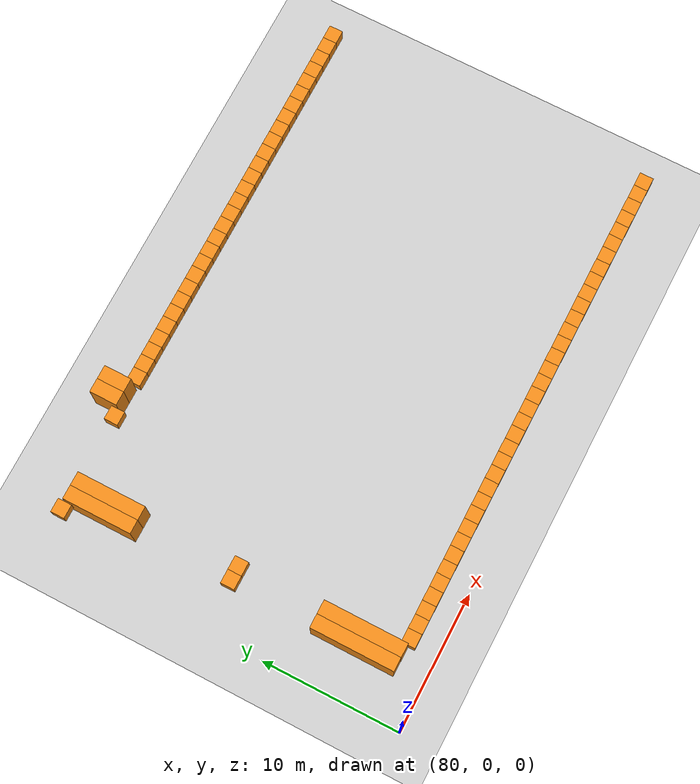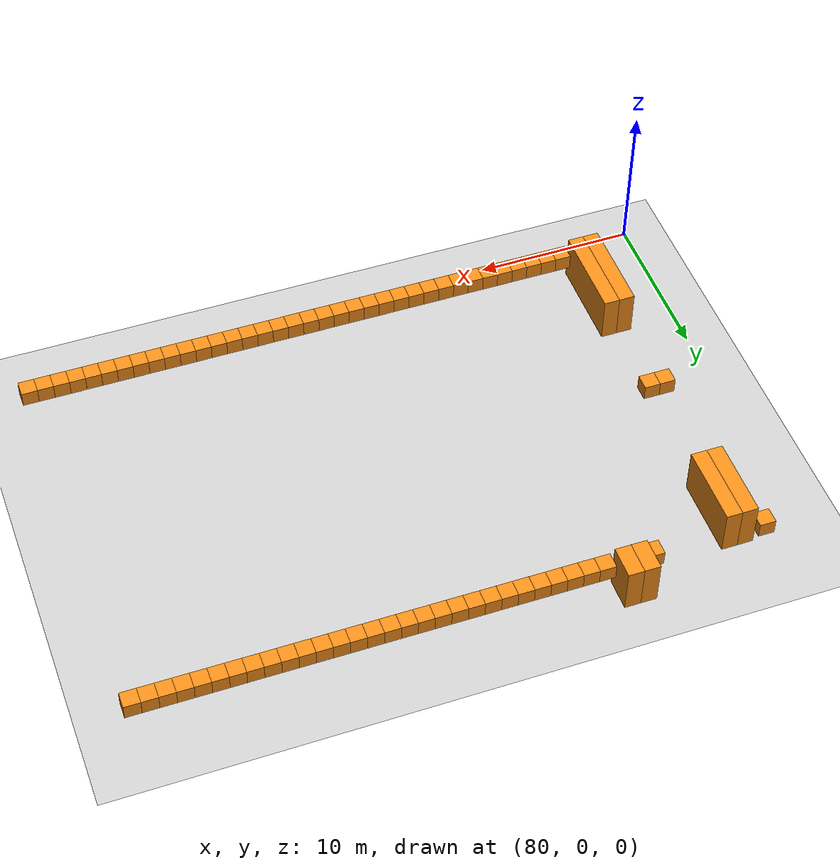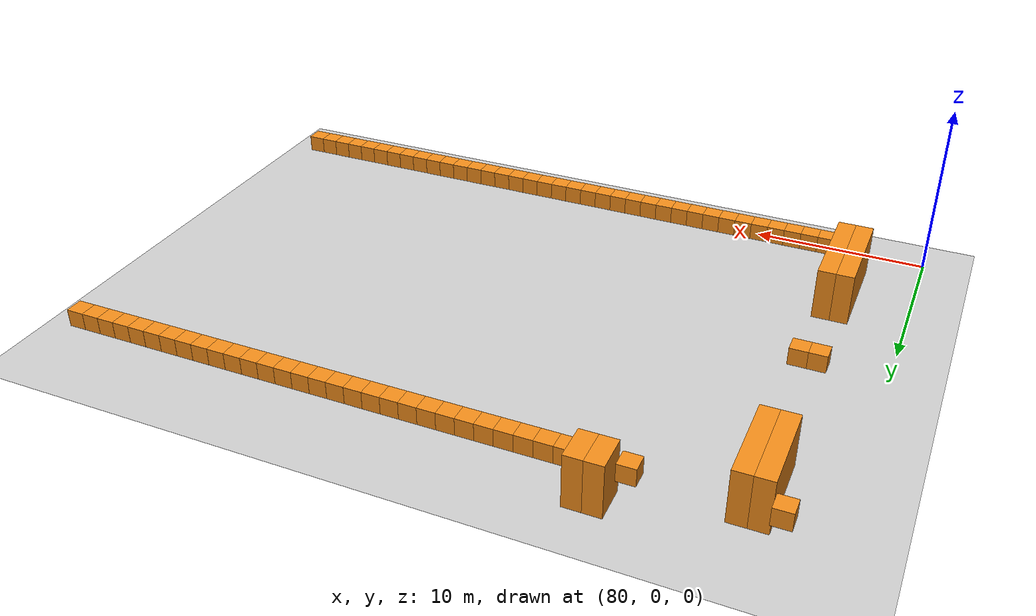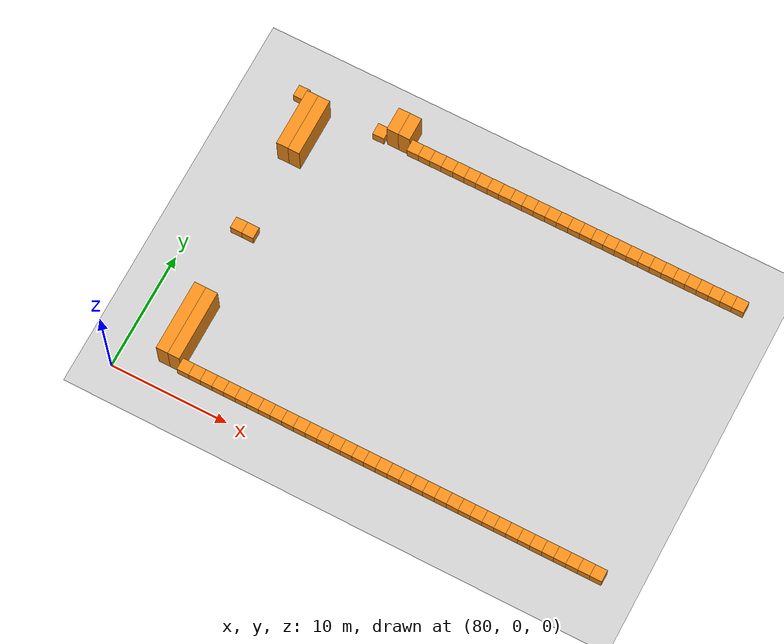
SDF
<sdf version="1.6">
 <world name="default">
  <include><uri>model://ground_plane</uri></include>
  <model name="unit_box_855">
   <pose>82.50    26.00     1.50 0 0 0</pose>
   <static>1</static>
   <link name="link">
    <inertial>
     <mass>5000</mass>
     <inertia><ixx>200</ixx><ixy>0</ixy><ixz>0</ixz><iyy>200</iyy><iyz>0</iyz><izz>200</izz></inertia>
    </inertial>
    <collision name="collision"><geometry><box><size>1 1 1</size></box></geometry></collision>
    <visual name="visual">
     <geometry><box><size>1 1 1</size></box></geometry>
     <material>
      <script><name>Gazebo/Orange</name><uri>file://media/materials/scripts/gazebo.material</uri></script>
     </material>
    </visual>
   </link>
  </model>
  <model name="unit_box_866">
   <pose>83.50     5.00     1.50 0 0 0</pose>
   <static>1</static>
   <link name="link">
    <inertial>
     <mass>5000</mass>
     <inertia><ixx>200</ixx><ixy>0</ixy><ixz>0</ixz><iyy>200</iyy><iyz>0</iyz><izz>200</izz></inertia>
    </inertial>
    <collision name="collision"><geometry><box><size>1 6 3</size></box></geometry></collision>
    <visual name="visual">
     <geometry><box><size>1 6 3</size></box></geometry>
     <material>
      <script><name>Gazebo/Orange</name><uri>file://media/materials/scripts/gazebo.material</uri></script>
     </material>
    </visual>
   </link>
  </model>
  <model name="unit_box_867">
   <pose>83.50    14.00     1.50 0 0 0</pose>
   <static>1</static>
   <link name="link">
    <inertial>
     <mass>5000</mass>
     <inertia><ixx>200</ixx><ixy>0</ixy><ixz>0</ixz><iyy>200</iyy><iyz>0</iyz><izz>200</izz></inertia>
    </inertial>
    <collision name="collision"><geometry><box><size>1 1 1</size></box></geometry></collision>
    <visual name="visual">
     <geometry><box><size>1 1 1</size></box></geometry>
     <material>
      <script><name>Gazebo/Orange</name><uri>file://media/materials/scripts/gazebo.material</uri></script>
     </material>
    </visual>
   </link>
  </model>
  <model name="unit_box_868">
   <pose>83.50    23.50     1.50 0 0 0</pose>
   <static>1</static>
   <link name="link">
    <inertial>
     <mass>5000</mass>
     <inertia><ixx>200</ixx><ixy>0</ixy><ixz>0</ixz><iyy>200</iyy><iyz>0</iyz><izz>200</izz></inertia>
    </inertial>
    <collision name="collision"><geometry><box><size>1 5 3</size></box></geometry></collision>
    <visual name="visual">
     <geometry><box><size>1 5 3</size></box></geometry>
     <material>
      <script><name>Gazebo/Orange</name><uri>file://media/materials/scripts/gazebo.material</uri></script>
     </material>
    </visual>
   </link>
  </model>
  <model name="unit_box_879">
   <pose>84.50     5.00     1.50 0 0 0</pose>
   <static>1</static>
   <link name="link">
    <inertial>
     <mass>5000</mass>
     <inertia><ixx>200</ixx><ixy>0</ixy><ixz>0</ixz><iyy>200</iyy><iyz>0</iyz><izz>200</izz></inertia>
    </inertial>
    <collision name="collision"><geometry><box><size>1 6 3</size></box></geometry></collision>
    <visual name="visual">
     <geometry><box><size>1 6 3</size></box></geometry>
     <material>
      <script><name>Gazebo/Orange</name><uri>file://media/materials/scripts/gazebo.material</uri></script>
     </material>
    </visual>
   </link>
  </model>
  <model name="unit_box_880">
   <pose>84.50    14.00     1.50 0 0 0</pose>
   <static>1</static>
   <link name="link">
    <inertial>
     <mass>5000</mass>
     <inertia><ixx>200</ixx><ixy>0</ixy><ixz>0</ixz><iyy>200</iyy><iyz>0</iyz><izz>200</izz></inertia>
    </inertial>
    <collision name="collision"><geometry><box><size>1 1 1</size></box></geometry></collision>
    <visual name="visual">
     <geometry><box><size>1 1 1</size></box></geometry>
     <material>
      <script><name>Gazebo/Orange</name><uri>file://media/materials/scripts/gazebo.material</uri></script>
     </material>
    </visual>
   </link>
  </model>
  <model name="unit_box_881">
   <pose>84.50    23.50     1.50 0 0 0</pose>
   <static>1</static>
   <link name="link">
    <inertial>
     <mass>5000</mass>
     <inertia><ixx>200</ixx><ixy>0</ixy><ixz>0</ixz><iyy>200</iyy><iyz>0</iyz><izz>200</izz></inertia>
    </inertial>
    <collision name="collision"><geometry><box><size>1 5 3</size></box></geometry></collision>
    <visual name="visual">
     <geometry><box><size>1 5 3</size></box></geometry>
     <material>
      <script><name>Gazebo/Orange</name><uri>file://media/materials/scripts/gazebo.material</uri></script>
     </material>
    </visual>
   </link>
  </model>
  <model name="unit_box_889">
   <pose>85.50     2.00     1.50 0 0 0</pose>
   <static>1</static>
   <link name="link">
    <inertial>
     <mass>5000</mass>
     <inertia><ixx>200</ixx><ixy>0</ixy><ixz>0</ixz><iyy>200</iyy><iyz>0</iyz><izz>200</izz></inertia>
    </inertial>
    <collision name="collision"><geometry><box><size>1 1 1</size></box></geometry></collision>
    <visual name="visual">
     <geometry><box><size>1 1 1</size></box></geometry>
     <material>
      <script><name>Gazebo/Orange</name><uri>file://media/materials/scripts/gazebo.material</uri></script>
     </material>
    </visual>
   </link>
  </model>
  <model name="unit_box_896">
   <pose>86.50     2.00     1.50 0 0 0</pose>
   <static>1</static>
   <link name="link">
    <inertial>
     <mass>5000</mass>
     <inertia><ixx>200</ixx><ixy>0</ixy><ixz>0</ixz><iyy>200</iyy><iyz>0</iyz><izz>200</izz></inertia>
    </inertial>
    <collision name="collision"><geometry><box><size>1 1 1</size></box></geometry></collision>
    <visual name="visual">
     <geometry><box><size>1 1 1</size></box></geometry>
     <material>
      <script><name>Gazebo/Orange</name><uri>file://media/materials/scripts/gazebo.material</uri></script>
     </material>
    </visual>
   </link>
  </model>
  <model name="unit_box_903">
   <pose>87.50     2.00     1.50 0 0 0</pose>
   <static>1</static>
   <link name="link">
    <inertial>
     <mass>5000</mass>
     <inertia><ixx>200</ixx><ixy>0</ixy><ixz>0</ixz><iyy>200</iyy><iyz>0</iyz><izz>200</izz></inertia>
    </inertial>
    <collision name="collision"><geometry><box><size>1 1 1</size></box></geometry></collision>
    <visual name="visual">
     <geometry><box><size>1 1 1</size></box></geometry>
     <material>
      <script><name>Gazebo/Orange</name><uri>file://media/materials/scripts/gazebo.material</uri></script>
     </material>
    </visual>
   </link>
  </model>
  <model name="unit_box_910">
   <pose>88.50     2.00     1.50 0 0 0</pose>
   <static>1</static>
   <link name="link">
    <inertial>
     <mass>5000</mass>
     <inertia><ixx>200</ixx><ixy>0</ixy><ixz>0</ixz><iyy>200</iyy><iyz>0</iyz><izz>200</izz></inertia>
    </inertial>
    <collision name="collision"><geometry><box><size>1 1 1</size></box></geometry></collision>
    <visual name="visual">
     <geometry><box><size>1 1 1</size></box></geometry>
     <material>
      <script><name>Gazebo/Orange</name><uri>file://media/materials/scripts/gazebo.material</uri></script>
     </material>
    </visual>
   </link>
  </model>
  <model name="unit_box_917">
   <pose>89.50     2.00     1.50 0 0 0</pose>
   <static>1</static>
   <link name="link">
    <inertial>
     <mass>5000</mass>
     <inertia><ixx>200</ixx><ixy>0</ixy><ixz>0</ixz><iyy>200</iyy><iyz>0</iyz><izz>200</izz></inertia>
    </inertial>
    <collision name="collision"><geometry><box><size>1 1 1</size></box></geometry></collision>
    <visual name="visual">
     <geometry><box><size>1 1 1</size></box></geometry>
     <material>
      <script><name>Gazebo/Orange</name><uri>file://media/materials/scripts/gazebo.material</uri></script>
     </material>
    </visual>
   </link>
  </model>
  <model name="unit_box_918">
   <pose>89.50    26.00     1.50 0 0 0</pose>
   <static>1</static>
   <link name="link">
    <inertial>
     <mass>5000</mass>
     <inertia><ixx>200</ixx><ixy>0</ixy><ixz>0</ixz><iyy>200</iyy><iyz>0</iyz><izz>200</izz></inertia>
    </inertial>
    <collision name="collision"><geometry><box><size>1 1 1</size></box></geometry></collision>
    <visual name="visual">
     <geometry><box><size>1 1 1</size></box></geometry>
     <material>
      <script><name>Gazebo/Orange</name><uri>file://media/materials/scripts/gazebo.material</uri></script>
     </material>
    </visual>
   </link>
  </model>
  <model name="unit_box_925">
   <pose>90.50     2.00     1.50 0 0 0</pose>
   <static>1</static>
   <link name="link">
    <inertial>
     <mass>5000</mass>
     <inertia><ixx>200</ixx><ixy>0</ixy><ixz>0</ixz><iyy>200</iyy><iyz>0</iyz><izz>200</izz></inertia>
    </inertial>
    <collision name="collision"><geometry><box><size>1 1 1</size></box></geometry></collision>
    <visual name="visual">
     <geometry><box><size>1 1 1</size></box></geometry>
     <material>
      <script><name>Gazebo/Orange</name><uri>file://media/materials/scripts/gazebo.material</uri></script>
     </material>
    </visual>
   </link>
  </model>
  <model name="unit_box_926">
   <pose>90.50    27.00     1.50 0 0 0</pose>
   <static>1</static>
   <link name="link">
    <inertial>
     <mass>5000</mass>
     <inertia><ixx>200</ixx><ixy>0</ixy><ixz>0</ixz><iyy>200</iyy><iyz>0</iyz><izz>200</izz></inertia>
    </inertial>
    <collision name="collision"><geometry><box><size>1 2 3</size></box></geometry></collision>
    <visual name="visual">
     <geometry><box><size>1 2 3</size></box></geometry>
     <material>
      <script><name>Gazebo/Orange</name><uri>file://media/materials/scripts/gazebo.material</uri></script>
     </material>
    </visual>
   </link>
  </model>
  <model name="unit_box_933">
   <pose>91.50     2.00     1.50 0 0 0</pose>
   <static>1</static>
   <link name="link">
    <inertial>
     <mass>5000</mass>
     <inertia><ixx>200</ixx><ixy>0</ixy><ixz>0</ixz><iyy>200</iyy><iyz>0</iyz><izz>200</izz></inertia>
    </inertial>
    <collision name="collision"><geometry><box><size>1 1 1</size></box></geometry></collision>
    <visual name="visual">
     <geometry><box><size>1 1 1</size></box></geometry>
     <material>
      <script><name>Gazebo/Orange</name><uri>file://media/materials/scripts/gazebo.material</uri></script>
     </material>
    </visual>
   </link>
  </model>
  <model name="unit_box_934">
   <pose>91.50    27.00     1.50 0 0 0</pose>
   <static>1</static>
   <link name="link">
    <inertial>
     <mass>5000</mass>
     <inertia><ixx>200</ixx><ixy>0</ixy><ixz>0</ixz><iyy>200</iyy><iyz>0</iyz><izz>200</izz></inertia>
    </inertial>
    <collision name="collision"><geometry><box><size>1 2 3</size></box></geometry></collision>
    <visual name="visual">
     <geometry><box><size>1 2 3</size></box></geometry>
     <material>
      <script><name>Gazebo/Orange</name><uri>file://media/materials/scripts/gazebo.material</uri></script>
     </material>
    </visual>
   </link>
  </model>
  <model name="unit_box_942">
   <pose>92.50     2.00     1.50 0 0 0</pose>
   <static>1</static>
   <link name="link">
    <inertial>
     <mass>5000</mass>
     <inertia><ixx>200</ixx><ixy>0</ixy><ixz>0</ixz><iyy>200</iyy><iyz>0</iyz><izz>200</izz></inertia>
    </inertial>
    <collision name="collision"><geometry><box><size>1 1 1</size></box></geometry></collision>
    <visual name="visual">
     <geometry><box><size>1 1 1</size></box></geometry>
     <material>
      <script><name>Gazebo/Orange</name><uri>file://media/materials/scripts/gazebo.material</uri></script>
     </material>
    </visual>
   </link>
  </model>
  <model name="unit_box_943">
   <pose>92.50    26.00     1.50 0 0 0</pose>
   <static>1</static>
   <link name="link">
    <inertial>
     <mass>5000</mass>
     <inertia><ixx>200</ixx><ixy>0</ixy><ixz>0</ixz><iyy>200</iyy><iyz>0</iyz><izz>200</izz></inertia>
    </inertial>
    <collision name="collision"><geometry><box><size>1 1 1</size></box></geometry></collision>
    <visual name="visual">
     <geometry><box><size>1 1 1</size></box></geometry>
     <material>
      <script><name>Gazebo/Orange</name><uri>file://media/materials/scripts/gazebo.material</uri></script>
     </material>
    </visual>
   </link>
  </model>
  <model name="unit_box_950">
   <pose>93.50     2.00     1.50 0 0 0</pose>
   <static>1</static>
   <link name="link">
    <inertial>
     <mass>5000</mass>
     <inertia><ixx>200</ixx><ixy>0</ixy><ixz>0</ixz><iyy>200</iyy><iyz>0</iyz><izz>200</izz></inertia>
    </inertial>
    <collision name="collision"><geometry><box><size>1 1 1</size></box></geometry></collision>
    <visual name="visual">
     <geometry><box><size>1 1 1</size></box></geometry>
     <material>
      <script><name>Gazebo/Orange</name><uri>file://media/materials/scripts/gazebo.material</uri></script>
     </material>
    </visual>
   </link>
  </model>
  <model name="unit_box_951">
   <pose>93.50    26.00     1.50 0 0 0</pose>
   <static>1</static>
   <link name="link">
    <inertial>
     <mass>5000</mass>
     <inertia><ixx>200</ixx><ixy>0</ixy><ixz>0</ixz><iyy>200</iyy><iyz>0</iyz><izz>200</izz></inertia>
    </inertial>
    <collision name="collision"><geometry><box><size>1 1 1</size></box></geometry></collision>
    <visual name="visual">
     <geometry><box><size>1 1 1</size></box></geometry>
     <material>
      <script><name>Gazebo/Orange</name><uri>file://media/materials/scripts/gazebo.material</uri></script>
     </material>
    </visual>
   </link>
  </model>
  <model name="unit_box_958">
   <pose>94.50     2.00     1.50 0 0 0</pose>
   <static>1</static>
   <link name="link">
    <inertial>
     <mass>5000</mass>
     <inertia><ixx>200</ixx><ixy>0</ixy><ixz>0</ixz><iyy>200</iyy><iyz>0</iyz><izz>200</izz></inertia>
    </inertial>
    <collision name="collision"><geometry><box><size>1 1 1</size></box></geometry></collision>
    <visual name="visual">
     <geometry><box><size>1 1 1</size></box></geometry>
     <material>
      <script><name>Gazebo/Orange</name><uri>file://media/materials/scripts/gazebo.material</uri></script>
     </material>
    </visual>
   </link>
  </model>
  <model name="unit_box_959">
   <pose>94.50    26.00     1.50 0 0 0</pose>
   <static>1</static>
   <link name="link">
    <inertial>
     <mass>5000</mass>
     <inertia><ixx>200</ixx><ixy>0</ixy><ixz>0</ixz><iyy>200</iyy><iyz>0</iyz><izz>200</izz></inertia>
    </inertial>
    <collision name="collision"><geometry><box><size>1 1 1</size></box></geometry></collision>
    <visual name="visual">
     <geometry><box><size>1 1 1</size></box></geometry>
     <material>
      <script><name>Gazebo/Orange</name><uri>file://media/materials/scripts/gazebo.material</uri></script>
     </material>
    </visual>
   </link>
  </model>
  <model name="unit_box_966">
   <pose>95.50     2.00     1.50 0 0 0</pose>
   <static>1</static>
   <link name="link">
    <inertial>
     <mass>5000</mass>
     <inertia><ixx>200</ixx><ixy>0</ixy><ixz>0</ixz><iyy>200</iyy><iyz>0</iyz><izz>200</izz></inertia>
    </inertial>
    <collision name="collision"><geometry><box><size>1 1 1</size></box></geometry></collision>
    <visual name="visual">
     <geometry><box><size>1 1 1</size></box></geometry>
     <material>
      <script><name>Gazebo/Orange</name><uri>file://media/materials/scripts/gazebo.material</uri></script>
     </material>
    </visual>
   </link>
  </model>
  <model name="unit_box_967">
   <pose>95.50    26.00     1.50 0 0 0</pose>
   <static>1</static>
   <link name="link">
    <inertial>
     <mass>5000</mass>
     <inertia><ixx>200</ixx><ixy>0</ixy><ixz>0</ixz><iyy>200</iyy><iyz>0</iyz><izz>200</izz></inertia>
    </inertial>
    <collision name="collision"><geometry><box><size>1 1 1</size></box></geometry></collision>
    <visual name="visual">
     <geometry><box><size>1 1 1</size></box></geometry>
     <material>
      <script><name>Gazebo/Orange</name><uri>file://media/materials/scripts/gazebo.material</uri></script>
     </material>
    </visual>
   </link>
  </model>
  <model name="unit_box_973">
   <pose>96.50     2.00     1.50 0 0 0</pose>
   <static>1</static>
   <link name="link">
    <inertial>
     <mass>5000</mass>
     <inertia><ixx>200</ixx><ixy>0</ixy><ixz>0</ixz><iyy>200</iyy><iyz>0</iyz><izz>200</izz></inertia>
    </inertial>
    <collision name="collision"><geometry><box><size>1 1 1</size></box></geometry></collision>
    <visual name="visual">
     <geometry><box><size>1 1 1</size></box></geometry>
     <material>
      <script><name>Gazebo/Orange</name><uri>file://media/materials/scripts/gazebo.material</uri></script>
     </material>
    </visual>
   </link>
  </model>
  <model name="unit_box_974">
   <pose>96.50    26.00     1.50 0 0 0</pose>
   <static>1</static>
   <link name="link">
    <inertial>
     <mass>5000</mass>
     <inertia><ixx>200</ixx><ixy>0</ixy><ixz>0</ixz><iyy>200</iyy><iyz>0</iyz><izz>200</izz></inertia>
    </inertial>
    <collision name="collision"><geometry><box><size>1 1 1</size></box></geometry></collision>
    <visual name="visual">
     <geometry><box><size>1 1 1</size></box></geometry>
     <material>
      <script><name>Gazebo/Orange</name><uri>file://media/materials/scripts/gazebo.material</uri></script>
     </material>
    </visual>
   </link>
  </model>
  <model name="unit_box_981">
   <pose>97.50     2.00     1.50 0 0 0</pose>
   <static>1</static>
   <link name="link">
    <inertial>
     <mass>5000</mass>
     <inertia><ixx>200</ixx><ixy>0</ixy><ixz>0</ixz><iyy>200</iyy><iyz>0</iyz><izz>200</izz></inertia>
    </inertial>
    <collision name="collision"><geometry><box><size>1 1 1</size></box></geometry></collision>
    <visual name="visual">
     <geometry><box><size>1 1 1</size></box></geometry>
     <material>
      <script><name>Gazebo/Orange</name><uri>file://media/materials/scripts/gazebo.material</uri></script>
     </material>
    </visual>
   </link>
  </model>
  <model name="unit_box_982">
   <pose>97.50    26.00     1.50 0 0 0</pose>
   <static>1</static>
   <link name="link">
    <inertial>
     <mass>5000</mass>
     <inertia><ixx>200</ixx><ixy>0</ixy><ixz>0</ixz><iyy>200</iyy><iyz>0</iyz><izz>200</izz></inertia>
    </inertial>
    <collision name="collision"><geometry><box><size>1 1 1</size></box></geometry></collision>
    <visual name="visual">
     <geometry><box><size>1 1 1</size></box></geometry>
     <material>
      <script><name>Gazebo/Orange</name><uri>file://media/materials/scripts/gazebo.material</uri></script>
     </material>
    </visual>
   </link>
  </model>
  <model name="unit_box_989">
   <pose>98.50     2.00     1.50 0 0 0</pose>
   <static>1</static>
   <link name="link">
    <inertial>
     <mass>5000</mass>
     <inertia><ixx>200</ixx><ixy>0</ixy><ixz>0</ixz><iyy>200</iyy><iyz>0</iyz><izz>200</izz></inertia>
    </inertial>
    <collision name="collision"><geometry><box><size>1 1 1</size></box></geometry></collision>
    <visual name="visual">
     <geometry><box><size>1 1 1</size></box></geometry>
     <material>
      <script><name>Gazebo/Orange</name><uri>file://media/materials/scripts/gazebo.material</uri></script>
     </material>
    </visual>
   </link>
  </model>
  <model name="unit_box_990">
   <pose>98.50    26.00     1.50 0 0 0</pose>
   <static>1</static>
   <link name="link">
    <inertial>
     <mass>5000</mass>
     <inertia><ixx>200</ixx><ixy>0</ixy><ixz>0</ixz><iyy>200</iyy><iyz>0</iyz><izz>200</izz></inertia>
    </inertial>
    <collision name="collision"><geometry><box><size>1 1 1</size></box></geometry></collision>
    <visual name="visual">
     <geometry><box><size>1 1 1</size></box></geometry>
     <material>
      <script><name>Gazebo/Orange</name><uri>file://media/materials/scripts/gazebo.material</uri></script>
     </material>
    </visual>
   </link>
  </model>
  <model name="unit_box_997">
   <pose>99.50     2.00     1.50 0 0 0</pose>
   <static>1</static>
   <link name="link">
    <inertial>
     <mass>5000</mass>
     <inertia><ixx>200</ixx><ixy>0</ixy><ixz>0</ixz><iyy>200</iyy><iyz>0</iyz><izz>200</izz></inertia>
    </inertial>
    <collision name="collision"><geometry><box><size>1 1 1</size></box></geometry></collision>
    <visual name="visual">
     <geometry><box><size>1 1 1</size></box></geometry>
     <material>
      <script><name>Gazebo/Orange</name><uri>file://media/materials/scripts/gazebo.material</uri></script>
     </material>
    </visual>
   </link>
  </model>
  <model name="unit_box_998">
   <pose>99.50    26.00     1.50 0 0 0</pose>
   <static>1</static>
   <link name="link">
    <inertial>
     <mass>5000</mass>
     <inertia><ixx>200</ixx><ixy>0</ixy><ixz>0</ixz><iyy>200</iyy><iyz>0</iyz><izz>200</izz></inertia>
    </inertial>
    <collision name="collision"><geometry><box><size>1 1 1</size></box></geometry></collision>
    <visual name="visual">
     <geometry><box><size>1 1 1</size></box></geometry>
     <material>
      <script><name>Gazebo/Orange</name><uri>file://media/materials/scripts/gazebo.material</uri></script>
     </material>
    </visual>
   </link>
  </model>
  <model name="unit_box_1004">
   <pose>100.50     2.00     1.50 0 0 0</pose>
   <static>1</static>
   <link name="link">
    <inertial>
     <mass>5000</mass>
     <inertia><ixx>200</ixx><ixy>0</ixy><ixz>0</ixz><iyy>200</iyy><iyz>0</iyz><izz>200</izz></inertia>
    </inertial>
    <collision name="collision"><geometry><box><size>1 1 1</size></box></geometry></collision>
    <visual name="visual">
     <geometry><box><size>1 1 1</size></box></geometry>
     <material>
      <script><name>Gazebo/Orange</name><uri>file://media/materials/scripts/gazebo.material</uri></script>
     </material>
    </visual>
   </link>
  </model>
  <model name="unit_box_1005">
   <pose>100.50    26.00     1.50 0 0 0</pose>
   <static>1</static>
   <link name="link">
    <inertial>
     <mass>5000</mass>
     <inertia><ixx>200</ixx><ixy>0</ixy><ixz>0</ixz><iyy>200</iyy><iyz>0</iyz><izz>200</izz></inertia>
    </inertial>
    <collision name="collision"><geometry><box><size>1 1 1</size></box></geometry></collision>
    <visual name="visual">
     <geometry><box><size>1 1 1</size></box></geometry>
     <material>
      <script><name>Gazebo/Orange</name><uri>file://media/materials/scripts/gazebo.material</uri></script>
     </material>
    </visual>
   </link>
  </model>
  <model name="unit_box_1010">
   <pose>101.50     2.00     1.50 0 0 0</pose>
   <static>1</static>
   <link name="link">
    <inertial>
     <mass>5000</mass>
     <inertia><ixx>200</ixx><ixy>0</ixy><ixz>0</ixz><iyy>200</iyy><iyz>0</iyz><izz>200</izz></inertia>
    </inertial>
    <collision name="collision"><geometry><box><size>1 1 1</size></box></geometry></collision>
    <visual name="visual">
     <geometry><box><size>1 1 1</size></box></geometry>
     <material>
      <script><name>Gazebo/Orange</name><uri>file://media/materials/scripts/gazebo.material</uri></script>
     </material>
    </visual>
   </link>
  </model>
  <model name="unit_box_1011">
   <pose>101.50    26.00     1.50 0 0 0</pose>
   <static>1</static>
   <link name="link">
    <inertial>
     <mass>5000</mass>
     <inertia><ixx>200</ixx><ixy>0</ixy><ixz>0</ixz><iyy>200</iyy><iyz>0</iyz><izz>200</izz></inertia>
    </inertial>
    <collision name="collision"><geometry><box><size>1 1 1</size></box></geometry></collision>
    <visual name="visual">
     <geometry><box><size>1 1 1</size></box></geometry>
     <material>
      <script><name>Gazebo/Orange</name><uri>file://media/materials/scripts/gazebo.material</uri></script>
     </material>
    </visual>
   </link>
  </model>
  <model name="unit_box_1016">
   <pose>102.50     2.00     1.50 0 0 0</pose>
   <static>1</static>
   <link name="link">
    <inertial>
     <mass>5000</mass>
     <inertia><ixx>200</ixx><ixy>0</ixy><ixz>0</ixz><iyy>200</iyy><iyz>0</iyz><izz>200</izz></inertia>
    </inertial>
    <collision name="collision"><geometry><box><size>1 1 1</size></box></geometry></collision>
    <visual name="visual">
     <geometry><box><size>1 1 1</size></box></geometry>
     <material>
      <script><name>Gazebo/Orange</name><uri>file://media/materials/scripts/gazebo.material</uri></script>
     </material>
    </visual>
   </link>
  </model>
  <model name="unit_box_1017">
   <pose>102.50    26.00     1.50 0 0 0</pose>
   <static>1</static>
   <link name="link">
    <inertial>
     <mass>5000</mass>
     <inertia><ixx>200</ixx><ixy>0</ixy><ixz>0</ixz><iyy>200</iyy><iyz>0</iyz><izz>200</izz></inertia>
    </inertial>
    <collision name="collision"><geometry><box><size>1 1 1</size></box></geometry></collision>
    <visual name="visual">
     <geometry><box><size>1 1 1</size></box></geometry>
     <material>
      <script><name>Gazebo/Orange</name><uri>file://media/materials/scripts/gazebo.material</uri></script>
     </material>
    </visual>
   </link>
  </model>
  <model name="unit_box_1023">
   <pose>103.50     2.00     1.50 0 0 0</pose>
   <static>1</static>
   <link name="link">
    <inertial>
     <mass>5000</mass>
     <inertia><ixx>200</ixx><ixy>0</ixy><ixz>0</ixz><iyy>200</iyy><iyz>0</iyz><izz>200</izz></inertia>
    </inertial>
    <collision name="collision"><geometry><box><size>1 1 1</size></box></geometry></collision>
    <visual name="visual">
     <geometry><box><size>1 1 1</size></box></geometry>
     <material>
      <script><name>Gazebo/Orange</name><uri>file://media/materials/scripts/gazebo.material</uri></script>
     </material>
    </visual>
   </link>
  </model>
  <model name="unit_box_1024">
   <pose>103.50    26.00     1.50 0 0 0</pose>
   <static>1</static>
   <link name="link">
    <inertial>
     <mass>5000</mass>
     <inertia><ixx>200</ixx><ixy>0</ixy><ixz>0</ixz><iyy>200</iyy><iyz>0</iyz><izz>200</izz></inertia>
    </inertial>
    <collision name="collision"><geometry><box><size>1 1 1</size></box></geometry></collision>
    <visual name="visual">
     <geometry><box><size>1 1 1</size></box></geometry>
     <material>
      <script><name>Gazebo/Orange</name><uri>file://media/materials/scripts/gazebo.material</uri></script>
     </material>
    </visual>
   </link>
  </model>
  <model name="unit_box_1030">
   <pose>104.50     2.00     1.50 0 0 0</pose>
   <static>1</static>
   <link name="link">
    <inertial>
     <mass>5000</mass>
     <inertia><ixx>200</ixx><ixy>0</ixy><ixz>0</ixz><iyy>200</iyy><iyz>0</iyz><izz>200</izz></inertia>
    </inertial>
    <collision name="collision"><geometry><box><size>1 1 1</size></box></geometry></collision>
    <visual name="visual">
     <geometry><box><size>1 1 1</size></box></geometry>
     <material>
      <script><name>Gazebo/Orange</name><uri>file://media/materials/scripts/gazebo.material</uri></script>
     </material>
    </visual>
   </link>
  </model>
  <model name="unit_box_1031">
   <pose>104.50    26.00     1.50 0 0 0</pose>
   <static>1</static>
   <link name="link">
    <inertial>
     <mass>5000</mass>
     <inertia><ixx>200</ixx><ixy>0</ixy><ixz>0</ixz><iyy>200</iyy><iyz>0</iyz><izz>200</izz></inertia>
    </inertial>
    <collision name="collision"><geometry><box><size>1 1 1</size></box></geometry></collision>
    <visual name="visual">
     <geometry><box><size>1 1 1</size></box></geometry>
     <material>
      <script><name>Gazebo/Orange</name><uri>file://media/materials/scripts/gazebo.material</uri></script>
     </material>
    </visual>
   </link>
  </model>
  <model name="unit_box_1037">
   <pose>105.50     2.00     1.50 0 0 0</pose>
   <static>1</static>
   <link name="link">
    <inertial>
     <mass>5000</mass>
     <inertia><ixx>200</ixx><ixy>0</ixy><ixz>0</ixz><iyy>200</iyy><iyz>0</iyz><izz>200</izz></inertia>
    </inertial>
    <collision name="collision"><geometry><box><size>1 1 1</size></box></geometry></collision>
    <visual name="visual">
     <geometry><box><size>1 1 1</size></box></geometry>
     <material>
      <script><name>Gazebo/Orange</name><uri>file://media/materials/scripts/gazebo.material</uri></script>
     </material>
    </visual>
   </link>
  </model>
  <model name="unit_box_1038">
   <pose>105.50    26.00     1.50 0 0 0</pose>
   <static>1</static>
   <link name="link">
    <inertial>
     <mass>5000</mass>
     <inertia><ixx>200</ixx><ixy>0</ixy><ixz>0</ixz><iyy>200</iyy><iyz>0</iyz><izz>200</izz></inertia>
    </inertial>
    <collision name="collision"><geometry><box><size>1 1 1</size></box></geometry></collision>
    <visual name="visual">
     <geometry><box><size>1 1 1</size></box></geometry>
     <material>
      <script><name>Gazebo/Orange</name><uri>file://media/materials/scripts/gazebo.material</uri></script>
     </material>
    </visual>
   </link>
  </model>
  <model name="unit_box_1044">
   <pose>106.50     2.00     1.50 0 0 0</pose>
   <static>1</static>
   <link name="link">
    <inertial>
     <mass>5000</mass>
     <inertia><ixx>200</ixx><ixy>0</ixy><ixz>0</ixz><iyy>200</iyy><iyz>0</iyz><izz>200</izz></inertia>
    </inertial>
    <collision name="collision"><geometry><box><size>1 1 1</size></box></geometry></collision>
    <visual name="visual">
     <geometry><box><size>1 1 1</size></box></geometry>
     <material>
      <script><name>Gazebo/Orange</name><uri>file://media/materials/scripts/gazebo.material</uri></script>
     </material>
    </visual>
   </link>
  </model>
  <model name="unit_box_1045">
   <pose>106.50    26.00     1.50 0 0 0</pose>
   <static>1</static>
   <link name="link">
    <inertial>
     <mass>5000</mass>
     <inertia><ixx>200</ixx><ixy>0</ixy><ixz>0</ixz><iyy>200</iyy><iyz>0</iyz><izz>200</izz></inertia>
    </inertial>
    <collision name="collision"><geometry><box><size>1 1 1</size></box></geometry></collision>
    <visual name="visual">
     <geometry><box><size>1 1 1</size></box></geometry>
     <material>
      <script><name>Gazebo/Orange</name><uri>file://media/materials/scripts/gazebo.material</uri></script>
     </material>
    </visual>
   </link>
  </model>
  <model name="unit_box_1051">
   <pose>107.50     2.00     1.50 0 0 0</pose>
   <static>1</static>
   <link name="link">
    <inertial>
     <mass>5000</mass>
     <inertia><ixx>200</ixx><ixy>0</ixy><ixz>0</ixz><iyy>200</iyy><iyz>0</iyz><izz>200</izz></inertia>
    </inertial>
    <collision name="collision"><geometry><box><size>1 1 1</size></box></geometry></collision>
    <visual name="visual">
     <geometry><box><size>1 1 1</size></box></geometry>
     <material>
      <script><name>Gazebo/Orange</name><uri>file://media/materials/scripts/gazebo.material</uri></script>
     </material>
    </visual>
   </link>
  </model>
  <model name="unit_box_1052">
   <pose>107.50    26.00     1.50 0 0 0</pose>
   <static>1</static>
   <link name="link">
    <inertial>
     <mass>5000</mass>
     <inertia><ixx>200</ixx><ixy>0</ixy><ixz>0</ixz><iyy>200</iyy><iyz>0</iyz><izz>200</izz></inertia>
    </inertial>
    <collision name="collision"><geometry><box><size>1 1 1</size></box></geometry></collision>
    <visual name="visual">
     <geometry><box><size>1 1 1</size></box></geometry>
     <material>
      <script><name>Gazebo/Orange</name><uri>file://media/materials/scripts/gazebo.material</uri></script>
     </material>
    </visual>
   </link>
  </model>
  <model name="unit_box_1059">
   <pose>108.50     2.00     1.50 0 0 0</pose>
   <static>1</static>
   <link name="link">
    <inertial>
     <mass>5000</mass>
     <inertia><ixx>200</ixx><ixy>0</ixy><ixz>0</ixz><iyy>200</iyy><iyz>0</iyz><izz>200</izz></inertia>
    </inertial>
    <collision name="collision"><geometry><box><size>1 1 1</size></box></geometry></collision>
    <visual name="visual">
     <geometry><box><size>1 1 1</size></box></geometry>
     <material>
      <script><name>Gazebo/Orange</name><uri>file://media/materials/scripts/gazebo.material</uri></script>
     </material>
    </visual>
   </link>
  </model>
  <model name="unit_box_1060">
   <pose>108.50    26.00     1.50 0 0 0</pose>
   <static>1</static>
   <link name="link">
    <inertial>
     <mass>5000</mass>
     <inertia><ixx>200</ixx><ixy>0</ixy><ixz>0</ixz><iyy>200</iyy><iyz>0</iyz><izz>200</izz></inertia>
    </inertial>
    <collision name="collision"><geometry><box><size>1 1 1</size></box></geometry></collision>
    <visual name="visual">
     <geometry><box><size>1 1 1</size></box></geometry>
     <material>
      <script><name>Gazebo/Orange</name><uri>file://media/materials/scripts/gazebo.material</uri></script>
     </material>
    </visual>
   </link>
  </model>
  <model name="unit_box_1068">
   <pose>109.50     2.00     1.50 0 0 0</pose>
   <static>1</static>
   <link name="link">
    <inertial>
     <mass>5000</mass>
     <inertia><ixx>200</ixx><ixy>0</ixy><ixz>0</ixz><iyy>200</iyy><iyz>0</iyz><izz>200</izz></inertia>
    </inertial>
    <collision name="collision"><geometry><box><size>1 1 1</size></box></geometry></collision>
    <visual name="visual">
     <geometry><box><size>1 1 1</size></box></geometry>
     <material>
      <script><name>Gazebo/Orange</name><uri>file://media/materials/scripts/gazebo.material</uri></script>
     </material>
    </visual>
   </link>
  </model>
  <model name="unit_box_1069">
   <pose>109.50    26.00     1.50 0 0 0</pose>
   <static>1</static>
   <link name="link">
    <inertial>
     <mass>5000</mass>
     <inertia><ixx>200</ixx><ixy>0</ixy><ixz>0</ixz><iyy>200</iyy><iyz>0</iyz><izz>200</izz></inertia>
    </inertial>
    <collision name="collision"><geometry><box><size>1 1 1</size></box></geometry></collision>
    <visual name="visual">
     <geometry><box><size>1 1 1</size></box></geometry>
     <material>
      <script><name>Gazebo/Orange</name><uri>file://media/materials/scripts/gazebo.material</uri></script>
     </material>
    </visual>
   </link>
  </model>
  <model name="unit_box_1077">
   <pose>110.50     2.00     1.50 0 0 0</pose>
   <static>1</static>
   <link name="link">
    <inertial>
     <mass>5000</mass>
     <inertia><ixx>200</ixx><ixy>0</ixy><ixz>0</ixz><iyy>200</iyy><iyz>0</iyz><izz>200</izz></inertia>
    </inertial>
    <collision name="collision"><geometry><box><size>1 1 1</size></box></geometry></collision>
    <visual name="visual">
     <geometry><box><size>1 1 1</size></box></geometry>
     <material>
      <script><name>Gazebo/Orange</name><uri>file://media/materials/scripts/gazebo.material</uri></script>
     </material>
    </visual>
   </link>
  </model>
  <model name="unit_box_1078">
   <pose>110.50    26.00     1.50 0 0 0</pose>
   <static>1</static>
   <link name="link">
    <inertial>
     <mass>5000</mass>
     <inertia><ixx>200</ixx><ixy>0</ixy><ixz>0</ixz><iyy>200</iyy><iyz>0</iyz><izz>200</izz></inertia>
    </inertial>
    <collision name="collision"><geometry><box><size>1 1 1</size></box></geometry></collision>
    <visual name="visual">
     <geometry><box><size>1 1 1</size></box></geometry>
     <material>
      <script><name>Gazebo/Orange</name><uri>file://media/materials/scripts/gazebo.material</uri></script>
     </material>
    </visual>
   </link>
  </model>
  <model name="unit_box_1086">
   <pose>111.50     2.00     1.50 0 0 0</pose>
   <static>1</static>
   <link name="link">
    <inertial>
     <mass>5000</mass>
     <inertia><ixx>200</ixx><ixy>0</ixy><ixz>0</ixz><iyy>200</iyy><iyz>0</iyz><izz>200</izz></inertia>
    </inertial>
    <collision name="collision"><geometry><box><size>1 1 1</size></box></geometry></collision>
    <visual name="visual">
     <geometry><box><size>1 1 1</size></box></geometry>
     <material>
      <script><name>Gazebo/Orange</name><uri>file://media/materials/scripts/gazebo.material</uri></script>
     </material>
    </visual>
   </link>
  </model>
  <model name="unit_box_1087">
   <pose>111.50    26.00     1.50 0 0 0</pose>
   <static>1</static>
   <link name="link">
    <inertial>
     <mass>5000</mass>
     <inertia><ixx>200</ixx><ixy>0</ixy><ixz>0</ixz><iyy>200</iyy><iyz>0</iyz><izz>200</izz></inertia>
    </inertial>
    <collision name="collision"><geometry><box><size>1 1 1</size></box></geometry></collision>
    <visual name="visual">
     <geometry><box><size>1 1 1</size></box></geometry>
     <material>
      <script><name>Gazebo/Orange</name><uri>file://media/materials/scripts/gazebo.material</uri></script>
     </material>
    </visual>
   </link>
  </model>
  <model name="unit_box_1094">
   <pose>112.50     2.00     1.50 0 0 0</pose>
   <static>1</static>
   <link name="link">
    <inertial>
     <mass>5000</mass>
     <inertia><ixx>200</ixx><ixy>0</ixy><ixz>0</ixz><iyy>200</iyy><iyz>0</iyz><izz>200</izz></inertia>
    </inertial>
    <collision name="collision"><geometry><box><size>1 1 1</size></box></geometry></collision>
    <visual name="visual">
     <geometry><box><size>1 1 1</size></box></geometry>
     <material>
      <script><name>Gazebo/Orange</name><uri>file://media/materials/scripts/gazebo.material</uri></script>
     </material>
    </visual>
   </link>
  </model>
  <model name="unit_box_1095">
   <pose>112.50    26.00     1.50 0 0 0</pose>
   <static>1</static>
   <link name="link">
    <inertial>
     <mass>5000</mass>
     <inertia><ixx>200</ixx><ixy>0</ixy><ixz>0</ixz><iyy>200</iyy><iyz>0</iyz><izz>200</izz></inertia>
    </inertial>
    <collision name="collision"><geometry><box><size>1 1 1</size></box></geometry></collision>
    <visual name="visual">
     <geometry><box><size>1 1 1</size></box></geometry>
     <material>
      <script><name>Gazebo/Orange</name><uri>file://media/materials/scripts/gazebo.material</uri></script>
     </material>
    </visual>
   </link>
  </model>
  <model name="unit_box_1102">
   <pose>113.50     2.00     1.50 0 0 0</pose>
   <static>1</static>
   <link name="link">
    <inertial>
     <mass>5000</mass>
     <inertia><ixx>200</ixx><ixy>0</ixy><ixz>0</ixz><iyy>200</iyy><iyz>0</iyz><izz>200</izz></inertia>
    </inertial>
    <collision name="collision"><geometry><box><size>1 1 1</size></box></geometry></collision>
    <visual name="visual">
     <geometry><box><size>1 1 1</size></box></geometry>
     <material>
      <script><name>Gazebo/Orange</name><uri>file://media/materials/scripts/gazebo.material</uri></script>
     </material>
    </visual>
   </link>
  </model>
  <model name="unit_box_1103">
   <pose>113.50    26.00     1.50 0 0 0</pose>
   <static>1</static>
   <link name="link">
    <inertial>
     <mass>5000</mass>
     <inertia><ixx>200</ixx><ixy>0</ixy><ixz>0</ixz><iyy>200</iyy><iyz>0</iyz><izz>200</izz></inertia>
    </inertial>
    <collision name="collision"><geometry><box><size>1 1 1</size></box></geometry></collision>
    <visual name="visual">
     <geometry><box><size>1 1 1</size></box></geometry>
     <material>
      <script><name>Gazebo/Orange</name><uri>file://media/materials/scripts/gazebo.material</uri></script>
     </material>
    </visual>
   </link>
  </model>
  <model name="unit_box_1110">
   <pose>114.50     2.00     1.50 0 0 0</pose>
   <static>1</static>
   <link name="link">
    <inertial>
     <mass>5000</mass>
     <inertia><ixx>200</ixx><ixy>0</ixy><ixz>0</ixz><iyy>200</iyy><iyz>0</iyz><izz>200</izz></inertia>
    </inertial>
    <collision name="collision"><geometry><box><size>1 1 1</size></box></geometry></collision>
    <visual name="visual">
     <geometry><box><size>1 1 1</size></box></geometry>
     <material>
      <script><name>Gazebo/Orange</name><uri>file://media/materials/scripts/gazebo.material</uri></script>
     </material>
    </visual>
   </link>
  </model>
  <model name="unit_box_1111">
   <pose>114.50    26.00     1.50 0 0 0</pose>
   <static>1</static>
   <link name="link">
    <inertial>
     <mass>5000</mass>
     <inertia><ixx>200</ixx><ixy>0</ixy><ixz>0</ixz><iyy>200</iyy><iyz>0</iyz><izz>200</izz></inertia>
    </inertial>
    <collision name="collision"><geometry><box><size>1 1 1</size></box></geometry></collision>
    <visual name="visual">
     <geometry><box><size>1 1 1</size></box></geometry>
     <material>
      <script><name>Gazebo/Orange</name><uri>file://media/materials/scripts/gazebo.material</uri></script>
     </material>
    </visual>
   </link>
  </model>
  <model name="unit_box_1118">
   <pose>115.50     2.00     1.50 0 0 0</pose>
   <static>1</static>
   <link name="link">
    <inertial>
     <mass>5000</mass>
     <inertia><ixx>200</ixx><ixy>0</ixy><ixz>0</ixz><iyy>200</iyy><iyz>0</iyz><izz>200</izz></inertia>
    </inertial>
    <collision name="collision"><geometry><box><size>1 1 1</size></box></geometry></collision>
    <visual name="visual">
     <geometry><box><size>1 1 1</size></box></geometry>
     <material>
      <script><name>Gazebo/Orange</name><uri>file://media/materials/scripts/gazebo.material</uri></script>
     </material>
    </visual>
   </link>
  </model>
  <model name="unit_box_1119">
   <pose>115.50    26.00     1.50 0 0 0</pose>
   <static>1</static>
   <link name="link">
    <inertial>
     <mass>5000</mass>
     <inertia><ixx>200</ixx><ixy>0</ixy><ixz>0</ixz><iyy>200</iyy><iyz>0</iyz><izz>200</izz></inertia>
    </inertial>
    <collision name="collision"><geometry><box><size>1 1 1</size></box></geometry></collision>
    <visual name="visual">
     <geometry><box><size>1 1 1</size></box></geometry>
     <material>
      <script><name>Gazebo/Orange</name><uri>file://media/materials/scripts/gazebo.material</uri></script>
     </material>
    </visual>
   </link>
  </model>
  <model name="unit_box_1127">
   <pose>116.50     2.00     1.50 0 0 0</pose>
   <static>1</static>
   <link name="link">
    <inertial>
     <mass>5000</mass>
     <inertia><ixx>200</ixx><ixy>0</ixy><ixz>0</ixz><iyy>200</iyy><iyz>0</iyz><izz>200</izz></inertia>
    </inertial>
    <collision name="collision"><geometry><box><size>1 1 1</size></box></geometry></collision>
    <visual name="visual">
     <geometry><box><size>1 1 1</size></box></geometry>
     <material>
      <script><name>Gazebo/Orange</name><uri>file://media/materials/scripts/gazebo.material</uri></script>
     </material>
    </visual>
   </link>
  </model>
  <model name="unit_box_1128">
   <pose>116.50    26.00     1.50 0 0 0</pose>
   <static>1</static>
   <link name="link">
    <inertial>
     <mass>5000</mass>
     <inertia><ixx>200</ixx><ixy>0</ixy><ixz>0</ixz><iyy>200</iyy><iyz>0</iyz><izz>200</izz></inertia>
    </inertial>
    <collision name="collision"><geometry><box><size>1 1 1</size></box></geometry></collision>
    <visual name="visual">
     <geometry><box><size>1 1 1</size></box></geometry>
     <material>
      <script><name>Gazebo/Orange</name><uri>file://media/materials/scripts/gazebo.material</uri></script>
     </material>
    </visual>
   </link>
  </model>
  <model name="unit_box_1136">
   <pose>117.50     2.00     1.50 0 0 0</pose>
   <static>1</static>
   <link name="link">
    <inertial>
     <mass>5000</mass>
     <inertia><ixx>200</ixx><ixy>0</ixy><ixz>0</ixz><iyy>200</iyy><iyz>0</iyz><izz>200</izz></inertia>
    </inertial>
    <collision name="collision"><geometry><box><size>1 1 1</size></box></geometry></collision>
    <visual name="visual">
     <geometry><box><size>1 1 1</size></box></geometry>
     <material>
      <script><name>Gazebo/Orange</name><uri>file://media/materials/scripts/gazebo.material</uri></script>
     </material>
    </visual>
   </link>
  </model>
  <model name="unit_box_1137">
   <pose>117.50    26.00     1.50 0 0 0</pose>
   <static>1</static>
   <link name="link">
    <inertial>
     <mass>5000</mass>
     <inertia><ixx>200</ixx><ixy>0</ixy><ixz>0</ixz><iyy>200</iyy><iyz>0</iyz><izz>200</izz></inertia>
    </inertial>
    <collision name="collision"><geometry><box><size>1 1 1</size></box></geometry></collision>
    <visual name="visual">
     <geometry><box><size>1 1 1</size></box></geometry>
     <material>
      <script><name>Gazebo/Orange</name><uri>file://media/materials/scripts/gazebo.material</uri></script>
     </material>
    </visual>
   </link>
  </model>
  <model name="unit_box_1145">
   <pose>118.50     2.00     1.50 0 0 0</pose>
   <static>1</static>
   <link name="link">
    <inertial>
     <mass>5000</mass>
     <inertia><ixx>200</ixx><ixy>0</ixy><ixz>0</ixz><iyy>200</iyy><iyz>0</iyz><izz>200</izz></inertia>
    </inertial>
    <collision name="collision"><geometry><box><size>1 1 1</size></box></geometry></collision>
    <visual name="visual">
     <geometry><box><size>1 1 1</size></box></geometry>
     <material>
      <script><name>Gazebo/Orange</name><uri>file://media/materials/scripts/gazebo.material</uri></script>
     </material>
    </visual>
   </link>
  </model>
  <model name="unit_box_1146">
   <pose>118.50    26.00     1.50 0 0 0</pose>
   <static>1</static>
   <link name="link">
    <inertial>
     <mass>5000</mass>
     <inertia><ixx>200</ixx><ixy>0</ixy><ixz>0</ixz><iyy>200</iyy><iyz>0</iyz><izz>200</izz></inertia>
    </inertial>
    <collision name="collision"><geometry><box><size>1 1 1</size></box></geometry></collision>
    <visual name="visual">
     <geometry><box><size>1 1 1</size></box></geometry>
     <material>
      <script><name>Gazebo/Orange</name><uri>file://media/materials/scripts/gazebo.material</uri></script>
     </material>
    </visual>
   </link>
  </model>
  <model name="unit_box_1154">
   <pose>119.50     2.00     1.50 0 0 0</pose>
   <static>1</static>
   <link name="link">
    <inertial>
     <mass>5000</mass>
     <inertia><ixx>200</ixx><ixy>0</ixy><ixz>0</ixz><iyy>200</iyy><iyz>0</iyz><izz>200</izz></inertia>
    </inertial>
    <collision name="collision"><geometry><box><size>1 1 1</size></box></geometry></collision>
    <visual name="visual">
     <geometry><box><size>1 1 1</size></box></geometry>
     <material>
      <script><name>Gazebo/Orange</name><uri>file://media/materials/scripts/gazebo.material</uri></script>
     </material>
    </visual>
   </link>
  </model>
  <model name="unit_box_1155">
   <pose>119.50    26.00     1.50 0 0 0</pose>
   <static>1</static>
   <link name="link">
    <inertial>
     <mass>5000</mass>
     <inertia><ixx>200</ixx><ixy>0</ixy><ixz>0</ixz><iyy>200</iyy><iyz>0</iyz><izz>200</izz></inertia>
    </inertial>
    <collision name="collision"><geometry><box><size>1 1 1</size></box></geometry></collision>
    <visual name="visual">
     <geometry><box><size>1 1 1</size></box></geometry>
     <material>
      <script><name>Gazebo/Orange</name><uri>file://media/materials/scripts/gazebo.material</uri></script>
     </material>
    </visual>
   </link>
  </model>
  <model name="unit_box_1163">
   <pose>120.50     2.00     1.50 0 0 0</pose>
   <static>1</static>
   <link name="link">
    <inertial>
     <mass>5000</mass>
     <inertia><ixx>200</ixx><ixy>0</ixy><ixz>0</ixz><iyy>200</iyy><iyz>0</iyz><izz>200</izz></inertia>
    </inertial>
    <collision name="collision"><geometry><box><size>1 1 1</size></box></geometry></collision>
    <visual name="visual">
     <geometry><box><size>1 1 1</size></box></geometry>
     <material>
      <script><name>Gazebo/Orange</name><uri>file://media/materials/scripts/gazebo.material</uri></script>
     </material>
    </visual>
   </link>
  </model>
  <model name="unit_box_1164">
   <pose>120.50    26.00     1.50 0 0 0</pose>
   <static>1</static>
   <link name="link">
    <inertial>
     <mass>5000</mass>
     <inertia><ixx>200</ixx><ixy>0</ixy><ixz>0</ixz><iyy>200</iyy><iyz>0</iyz><izz>200</izz></inertia>
    </inertial>
    <collision name="collision"><geometry><box><size>1 1 1</size></box></geometry></collision>
    <visual name="visual">
     <geometry><box><size>1 1 1</size></box></geometry>
     <material>
      <script><name>Gazebo/Orange</name><uri>file://media/materials/scripts/gazebo.material</uri></script>
     </material>
    </visual>
   </link>
  </model>
 </world>
</sdf>
